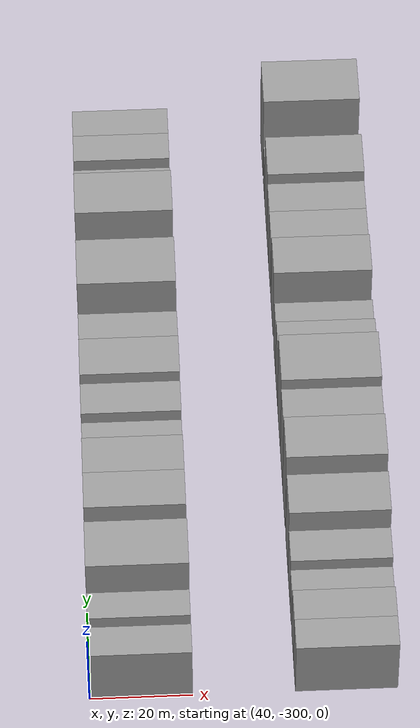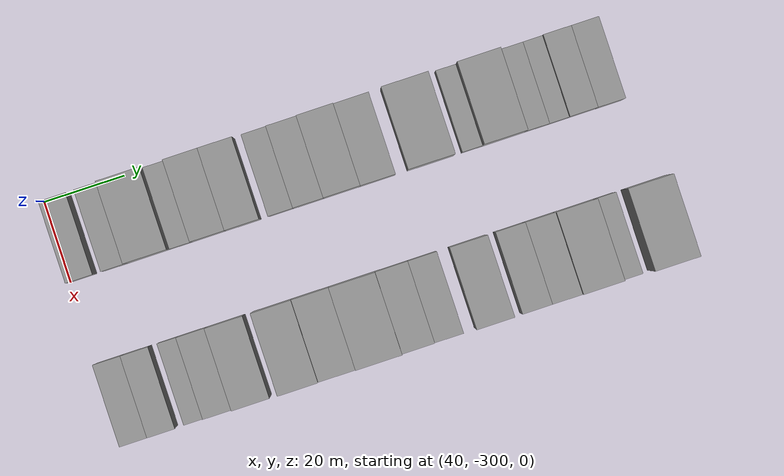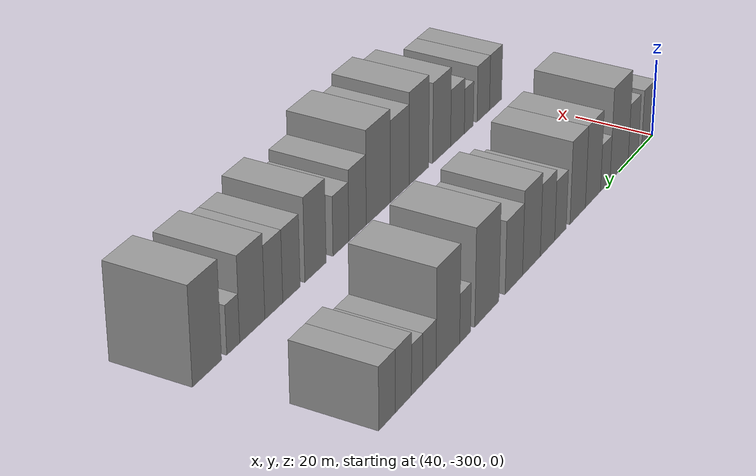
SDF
<sdf version="1.6">
 <world name="default">
  <model name="building_1">
   <static>1</static>
   <pose>50.0000 -296.6885 0 0.000000 0.000000 0.000000</pose>
   <link name="link">
    <pose>0 0 7.50 0 0 0</pose>
    <collision name="collision"><geometry><box><size>20.0000 6.6230 15.0000</size></box></geometry></collision>
    <visual name="visual">
     <cast_shadows>0</cast_shadows>
     <geometry><box><size>20.0000 6.6230 15.0000</size></box></geometry>
     <material>
      <script>
       <uri>model://grey_wall/materials/scripts</uri>
       <uri>model://grey_wall/materials/textures</uri>
       <name>vrc/grey_wall</name>
      </script>
     </material>
    </visual>
   </link>
  </model>
  <model name="building_2">
   <static>1</static>
   <pose>50.0000 -288.3620 0 0.000000 0.000000 0.000000</pose>
   <link name="link">
    <pose>0 0 7.50 0 0 0</pose>
    <collision name="collision"><geometry><box><size>20.0000 6.0301 15.0000</size></box></geometry></collision>
    <visual name="visual">
     <cast_shadows>0</cast_shadows>
     <geometry><box><size>20.0000 6.0301 15.0000</size></box></geometry>
     <material>
      <script>
       <uri>model://grey_wall/materials/scripts</uri>
       <uri>model://grey_wall/materials/textures</uri>
       <name>vrc/grey_wall</name>
      </script>
     </material>
    </visual>
   </link>
  </model>
  <model name="building_3">
   <static>1</static>
   <pose>50.0000 -280.0617 0 0.000000 0.000000 0.000000</pose>
   <link name="link">
    <pose>0 0 12.00 0 0 0</pose>
    <collision name="collision"><geometry><box><size>20.0000 10.5706 24.0000</size></box></geometry></collision>
    <visual name="visual">
     <cast_shadows>0</cast_shadows>
     <geometry><box><size>20.0000 10.5706 24.0000</size></box></geometry>
     <material>
      <script>
       <uri>model://grey_wall/materials/scripts</uri>
       <uri>model://grey_wall/materials/textures</uri>
       <name>vrc/grey_wall</name>
      </script>
     </material>
    </visual>
   </link>
  </model>
  <model name="building_4">
   <static>1</static>
   <pose>50.0000 -272.0623 0 0.000000 0.000000 0.000000</pose>
   <link name="link">
    <pose>0 0 6.00 0 0 0</pose>
    <collision name="collision"><geometry><box><size>20.0000 5.4283 12.0000</size></box></geometry></collision>
    <visual name="visual">
     <cast_shadows>0</cast_shadows>
     <geometry><box><size>20.0000 5.4283 12.0000</size></box></geometry>
     <material>
      <script>
       <uri>model://grey_wall/materials/scripts</uri>
       <uri>model://grey_wall/materials/textures</uri>
       <name>vrc/grey_wall</name>
      </script>
     </material>
    </visual>
   </link>
  </model>
  <model name="building_5">
   <static>1</static>
   <pose>50.0000 -265.1304 0 0.000000 0.000000 0.000000</pose>
   <link name="link">
    <pose>0 0 10.50 0 0 0</pose>
    <collision name="collision"><geometry><box><size>20.0000 8.4354 21.0000</size></box></geometry></collision>
    <visual name="visual">
     <cast_shadows>0</cast_shadows>
     <geometry><box><size>20.0000 8.4354 21.0000</size></box></geometry>
     <material>
      <script>
       <uri>model://grey_wall/materials/scripts</uri>
       <uri>model://grey_wall/materials/textures</uri>
       <name>vrc/grey_wall</name>
      </script>
     </material>
    </visual>
   </link>
  </model>
  <model name="building_6">
   <static>1</static>
   <pose>50.0000 -256.7108 0 0.000000 0.000000 0.000000</pose>
   <link name="link">
    <pose>0 0 10.50 0 0 0</pose>
    <collision name="collision"><geometry><box><size>20.0000 8.4038 21.0000</size></box></geometry></collision>
    <visual name="visual">
     <cast_shadows>0</cast_shadows>
     <geometry><box><size>20.0000 8.4038 21.0000</size></box></geometry>
     <material>
      <script>
       <uri>model://grey_wall/materials/scripts</uri>
       <uri>model://grey_wall/materials/textures</uri>
       <name>vrc/grey_wall</name>
      </script>
     </material>
    </visual>
   </link>
  </model>
  <model name="building_7">
   <static>1</static>
   <pose>50.0000 -247.4542 0 0.000000 0.000000 0.000000</pose>
   <link name="link">
    <pose>0 0 7.50 0 0 0</pose>
    <collision name="collision"><geometry><box><size>20.0000 6.1095 15.0000</size></box></geometry></collision>
    <visual name="visual">
     <cast_shadows>0</cast_shadows>
     <geometry><box><size>20.0000 6.1095 15.0000</size></box></geometry>
     <material>
      <script>
       <uri>model://grey_wall/materials/scripts</uri>
       <uri>model://grey_wall/materials/textures</uri>
       <name>vrc/grey_wall</name>
      </script>
     </material>
    </visual>
   </link>
  </model>
  <model name="building_8">
   <static>1</static>
   <pose>50.0000 -240.6647 0 0.000000 0.000000 0.000000</pose>
   <link name="link">
    <pose>0 0 9.00 0 0 0</pose>
    <collision name="collision"><geometry><box><size>20.0000 7.4693 18.0000</size></box></geometry></collision>
    <visual name="visual">
     <cast_shadows>0</cast_shadows>
     <geometry><box><size>20.0000 7.4693 18.0000</size></box></geometry>
     <material>
      <script>
       <uri>model://grey_wall/materials/scripts</uri>
       <uri>model://grey_wall/materials/textures</uri>
       <name>vrc/grey_wall</name>
      </script>
     </material>
    </visual>
   </link>
  </model>
  <model name="building_9">
   <static>1</static>
   <pose>50.0000 -232.4220 0 0.000000 0.000000 0.000000</pose>
   <link name="link">
    <pose>0 0 10.50 0 0 0</pose>
    <collision name="collision"><geometry><box><size>20.0000 9.0161 21.0000</size></box></geometry></collision>
    <visual name="visual">
     <cast_shadows>0</cast_shadows>
     <geometry><box><size>20.0000 9.0161 21.0000</size></box></geometry>
     <material>
      <script>
       <uri>model://grey_wall/materials/scripts</uri>
       <uri>model://grey_wall/materials/textures</uri>
       <name>vrc/grey_wall</name>
      </script>
     </material>
    </visual>
   </link>
  </model>
  <model name="building_10">
   <static>1</static>
   <pose>50.0000 -223.6112 0 0.000000 0.000000 0.000000</pose>
   <link name="link">
    <pose>0 0 9.00 0 0 0</pose>
    <collision name="collision"><geometry><box><size>20.0000 8.6056 18.0000</size></box></geometry></collision>
    <visual name="visual">
     <cast_shadows>0</cast_shadows>
     <geometry><box><size>20.0000 8.6056 18.0000</size></box></geometry>
     <material>
      <script>
       <uri>model://grey_wall/materials/scripts</uri>
       <uri>model://grey_wall/materials/textures</uri>
       <name>vrc/grey_wall</name>
      </script>
     </material>
    </visual>
   </link>
  </model>
  <model name="building_11">
   <static>1</static>
   <pose>50.0000 -210.5880 0 0.000000 0.000000 0.000000</pose>
   <link name="link">
    <pose>0 0 12.00 0 0 0</pose>
    <collision name="collision"><geometry><box><size>20.0000 11.4408 24.0000</size></box></geometry></collision>
    <visual name="visual">
     <cast_shadows>0</cast_shadows>
     <geometry><box><size>20.0000 11.4408 24.0000</size></box></geometry>
     <material>
      <script>
       <uri>model://grey_wall/materials/scripts</uri>
       <uri>model://grey_wall/materials/textures</uri>
       <name>vrc/grey_wall</name>
      </script>
     </material>
    </visual>
   </link>
  </model>
  <model name="building_12">
   <static>1</static>
   <pose>50.0000 -200.3734 0 0.000000 0.000000 0.000000</pose>
   <link name="link">
    <pose>0 0 6.00 0 0 0</pose>
    <collision name="collision"><geometry><box><size>20.0000 4.9884 12.0000</size></box></geometry></collision>
    <visual name="visual">
     <cast_shadows>0</cast_shadows>
     <geometry><box><size>20.0000 4.9884 12.0000</size></box></geometry>
     <material>
      <script>
       <uri>model://grey_wall/materials/scripts</uri>
       <uri>model://grey_wall/materials/textures</uri>
       <name>vrc/grey_wall</name>
      </script>
     </material>
    </visual>
   </link>
  </model>
  <model name="building_13">
   <static>1</static>
   <pose>50.0000 -192.5975 0 0.000000 0.000000 0.000000</pose>
   <link name="link">
    <pose>0 0 12.00 0 0 0</pose>
    <collision name="collision"><geometry><box><size>20.0000 10.5634 24.0000</size></box></geometry></collision>
    <visual name="visual">
     <cast_shadows>0</cast_shadows>
     <geometry><box><size>20.0000 10.5634 24.0000</size></box></geometry>
     <material>
      <script>
       <uri>model://grey_wall/materials/scripts</uri>
       <uri>model://grey_wall/materials/textures</uri>
       <name>vrc/grey_wall</name>
      </script>
     </material>
    </visual>
   </link>
  </model>
  <model name="building_14">
   <static>1</static>
   <pose>50.0000 -184.3863 0 0.000000 0.000000 0.000000</pose>
   <link name="link">
    <pose>0 0 6.00 0 0 0</pose>
    <collision name="collision"><geometry><box><size>20.0000 5.8589 12.0000</size></box></geometry></collision>
    <visual name="visual">
     <cast_shadows>0</cast_shadows>
     <geometry><box><size>20.0000 5.8589 12.0000</size></box></geometry>
     <material>
      <script>
       <uri>model://grey_wall/materials/scripts</uri>
       <uri>model://grey_wall/materials/textures</uri>
       <name>vrc/grey_wall</name>
      </script>
     </material>
    </visual>
   </link>
  </model>
  <model name="building_15">
   <static>1</static>
   <pose>50.0000 -179.0469 0 0.000000 0.000000 0.000000</pose>
   <link name="link">
    <pose>0 0 6.00 0 0 0</pose>
    <collision name="collision"><geometry><box><size>20.0000 4.8199 12.0000</size></box></geometry></collision>
    <visual name="visual">
     <cast_shadows>0</cast_shadows>
     <geometry><box><size>20.0000 4.8199 12.0000</size></box></geometry>
     <material>
      <script>
       <uri>model://grey_wall/materials/scripts</uri>
       <uri>model://grey_wall/materials/textures</uri>
       <name>vrc/grey_wall</name>
      </script>
     </material>
    </visual>
   </link>
  </model>
  <model name="building_16">
   <static>1</static>
   <pose>50.0000 -173.2022 0 0.000000 0.000000 0.000000</pose>
   <link name="link">
    <pose>0 0 7.50 0 0 0</pose>
    <collision name="collision"><geometry><box><size>20.0000 6.8695 15.0000</size></box></geometry></collision>
    <visual name="visual">
     <cast_shadows>0</cast_shadows>
     <geometry><box><size>20.0000 6.8695 15.0000</size></box></geometry>
     <material>
      <script>
       <uri>model://grey_wall/materials/scripts</uri>
       <uri>model://grey_wall/materials/textures</uri>
       <name>vrc/grey_wall</name>
      </script>
     </material>
    </visual>
   </link>
  </model>
  <model name="building_17">
   <static>1</static>
   <pose>50.0000 -166.3987 0 0.000000 0.000000 0.000000</pose>
   <link name="link">
    <pose>0 0 7.50 0 0 0</pose>
    <collision name="collision"><geometry><box><size>20.0000 6.7375 15.0000</size></box></geometry></collision>
    <visual name="visual">
     <cast_shadows>0</cast_shadows>
     <geometry><box><size>20.0000 6.7375 15.0000</size></box></geometry>
     <material>
      <script>
       <uri>model://grey_wall/materials/scripts</uri>
       <uri>model://grey_wall/materials/textures</uri>
       <name>vrc/grey_wall</name>
      </script>
     </material>
    </visual>
   </link>
  </model>
  <model name="building_70">
   <static>1</static>
   <pose>90.0000 -296.6307 0 0.000000 0.000000 0.000000</pose>
   <link name="link">
    <pose>0 0 7.50 0 0 0</pose>
    <collision name="collision"><geometry><box><size>20.0000 6.7386 15.0000</size></box></geometry></collision>
    <visual name="visual">
     <cast_shadows>0</cast_shadows>
     <geometry><box><size>20.0000 6.7386 15.0000</size></box></geometry>
     <material>
      <script>
       <uri>model://grey_wall/materials/scripts</uri>
       <uri>model://grey_wall/materials/textures</uri>
       <name>vrc/grey_wall</name>
      </script>
     </material>
    </visual>
   </link>
  </model>
  <model name="building_71">
   <static>1</static>
   <pose>90.0000 -289.8558 0 0.000000 0.000000 0.000000</pose>
   <link name="link">
    <pose>0 0 7.50 0 0 0</pose>
    <collision name="collision"><geometry><box><size>20.0000 6.8113 15.0000</size></box></geometry></collision>
    <visual name="visual">
     <cast_shadows>0</cast_shadows>
     <geometry><box><size>20.0000 6.8113 15.0000</size></box></geometry>
     <material>
      <script>
       <uri>model://grey_wall/materials/scripts</uri>
       <uri>model://grey_wall/materials/textures</uri>
       <name>vrc/grey_wall</name>
      </script>
     </material>
    </visual>
   </link>
  </model>
  <model name="building_72">
   <static>1</static>
   <pose>90.0000 -282.0487 0 0.000000 0.000000 0.000000</pose>
   <link name="link">
    <pose>0 0 6.00 0 0 0</pose>
    <collision name="collision"><geometry><box><size>20.0000 4.8029 12.0000</size></box></geometry></collision>
    <visual name="visual">
     <cast_shadows>0</cast_shadows>
     <geometry><box><size>20.0000 4.8029 12.0000</size></box></geometry>
     <material>
      <script>
       <uri>model://grey_wall/materials/scripts</uri>
       <uri>model://grey_wall/materials/textures</uri>
       <name>vrc/grey_wall</name>
      </script>
     </material>
    </visual>
   </link>
  </model>
  <model name="building_73">
   <static>1</static>
   <pose>90.0000 -276.0375 0 0.000000 0.000000 0.000000</pose>
   <link name="link">
    <pose>0 0 7.50 0 0 0</pose>
    <collision name="collision"><geometry><box><size>20.0000 7.2195 15.0000</size></box></geometry></collision>
    <visual name="visual">
     <cast_shadows>0</cast_shadows>
     <geometry><box><size>20.0000 7.2195 15.0000</size></box></geometry>
     <material>
      <script>
       <uri>model://grey_wall/materials/scripts</uri>
       <uri>model://grey_wall/materials/textures</uri>
       <name>vrc/grey_wall</name>
      </script>
     </material>
    </visual>
   </link>
  </model>
  <model name="building_74">
   <static>1</static>
   <pose>90.0000 -267.8022 0 0.000000 0.000000 0.000000</pose>
   <link name="link">
    <pose>0 0 10.50 0 0 0</pose>
    <collision name="collision"><geometry><box><size>20.0000 9.2510 21.0000</size></box></geometry></collision>
    <visual name="visual">
     <cast_shadows>0</cast_shadows>
     <geometry><box><size>20.0000 9.2510 21.0000</size></box></geometry>
     <material>
      <script>
       <uri>model://grey_wall/materials/scripts</uri>
       <uri>model://grey_wall/materials/textures</uri>
       <name>vrc/grey_wall</name>
      </script>
     </material>
    </visual>
   </link>
  </model>
  <model name="building_75">
   <static>1</static>
   <pose>90.0000 -256.2626 0 0.000000 0.000000 0.000000</pose>
   <link name="link">
    <pose>0 0 12.00 0 0 0</pose>
    <collision name="collision"><geometry><box><size>20.0000 9.8283 24.0000</size></box></geometry></collision>
    <visual name="visual">
     <cast_shadows>0</cast_shadows>
     <geometry><box><size>20.0000 9.8283 24.0000</size></box></geometry>
     <material>
      <script>
       <uri>model://grey_wall/materials/scripts</uri>
       <uri>model://grey_wall/materials/textures</uri>
       <name>vrc/grey_wall</name>
      </script>
     </material>
    </visual>
   </link>
  </model>
  <model name="building_76">
   <static>1</static>
   <pose>90.0000 -246.8110 0 0.000000 0.000000 0.000000</pose>
   <link name="link">
    <pose>0 0 10.50 0 0 0</pose>
    <collision name="collision"><geometry><box><size>20.0000 9.0748 21.0000</size></box></geometry></collision>
    <visual name="visual">
     <cast_shadows>0</cast_shadows>
     <geometry><box><size>20.0000 9.0748 21.0000</size></box></geometry>
     <material>
      <script>
       <uri>model://grey_wall/materials/scripts</uri>
       <uri>model://grey_wall/materials/textures</uri>
       <name>vrc/grey_wall</name>
      </script>
     </material>
    </visual>
   </link>
  </model>
  <model name="building_77">
   <static>1</static>
   <pose>90.0000 -236.6115 0 0.000000 0.000000 0.000000</pose>
   <link name="link">
    <pose>0 0 12.00 0 0 0</pose>
    <collision name="collision"><geometry><box><size>20.0000 11.3241 24.0000</size></box></geometry></collision>
    <visual name="visual">
     <cast_shadows>0</cast_shadows>
     <geometry><box><size>20.0000 11.3241 24.0000</size></box></geometry>
     <material>
      <script>
       <uri>model://grey_wall/materials/scripts</uri>
       <uri>model://grey_wall/materials/textures</uri>
       <name>vrc/grey_wall</name>
      </script>
     </material>
    </visual>
   </link>
  </model>
  <model name="building_78">
   <static>1</static>
   <pose>90.0000 -226.9685 0 0.000000 0.000000 0.000000</pose>
   <link name="link">
    <pose>0 0 9.00 0 0 0</pose>
    <collision name="collision"><geometry><box><size>20.0000 7.9618 18.0000</size></box></geometry></collision>
    <visual name="visual">
     <cast_shadows>0</cast_shadows>
     <geometry><box><size>20.0000 7.9618 18.0000</size></box></geometry>
     <material>
      <script>
       <uri>model://grey_wall/materials/scripts</uri>
       <uri>model://grey_wall/materials/textures</uri>
       <name>vrc/grey_wall</name>
      </script>
     </material>
    </visual>
   </link>
  </model>
  <model name="building_79">
   <static>1</static>
   <pose>90.0000 -219.4163 0 0.000000 0.000000 0.000000</pose>
   <link name="link">
    <pose>0 0 7.50 0 0 0</pose>
    <collision name="collision"><geometry><box><size>20.0000 7.1426 15.0000</size></box></geometry></collision>
    <visual name="visual">
     <cast_shadows>0</cast_shadows>
     <geometry><box><size>20.0000 7.1426 15.0000</size></box></geometry>
     <material>
      <script>
       <uri>model://grey_wall/materials/scripts</uri>
       <uri>model://grey_wall/materials/textures</uri>
       <name>vrc/grey_wall</name>
      </script>
     </material>
    </visual>
   </link>
  </model>
  <model name="building_80">
   <static>1</static>
   <pose>90.0000 -208.2150 0 0.000000 0.000000 0.000000</pose>
   <link name="link">
    <pose>0 0 10.50 0 0 0</pose>
    <collision name="collision"><geometry><box><size>20.0000 9.2599 21.0000</size></box></geometry></collision>
    <visual name="visual">
     <cast_shadows>0</cast_shadows>
     <geometry><box><size>20.0000 9.2599 21.0000</size></box></geometry>
     <material>
      <script>
       <uri>model://grey_wall/materials/scripts</uri>
       <uri>model://grey_wall/materials/textures</uri>
       <name>vrc/grey_wall</name>
      </script>
     </material>
    </visual>
   </link>
  </model>
  <model name="building_81">
   <static>1</static>
   <pose>90.0000 -197.9384 0 0.000000 0.000000 0.000000</pose>
   <link name="link">
    <pose>0 0 9.00 0 0 0</pose>
    <collision name="collision"><geometry><box><size>20.0000 7.2932 18.0000</size></box></geometry></collision>
    <visual name="visual">
     <cast_shadows>0</cast_shadows>
     <geometry><box><size>20.0000 7.2932 18.0000</size></box></geometry>
     <material>
      <script>
       <uri>model://grey_wall/materials/scripts</uri>
       <uri>model://grey_wall/materials/textures</uri>
       <name>vrc/grey_wall</name>
      </script>
     </material>
    </visual>
   </link>
  </model>
  <model name="building_82">
   <static>1</static>
   <pose>90.0000 -190.6180 0 0.000000 0.000000 0.000000</pose>
   <link name="link">
    <pose>0 0 9.00 0 0 0</pose>
    <collision name="collision"><geometry><box><size>20.0000 7.3476 18.0000</size></box></geometry></collision>
    <visual name="visual">
     <cast_shadows>0</cast_shadows>
     <geometry><box><size>20.0000 7.3476 18.0000</size></box></geometry>
     <material>
      <script>
       <uri>model://grey_wall/materials/scripts</uri>
       <uri>model://grey_wall/materials/textures</uri>
       <name>vrc/grey_wall</name>
      </script>
     </material>
    </visual>
   </link>
  </model>
  <model name="building_83">
   <static>1</static>
   <pose>90.0000 -181.9097 0 0.000000 0.000000 0.000000</pose>
   <link name="link">
    <pose>0 0 10.50 0 0 0</pose>
    <collision name="collision"><geometry><box><size>20.0000 10.0691 21.0000</size></box></geometry></collision>
    <visual name="visual">
     <cast_shadows>0</cast_shadows>
     <geometry><box><size>20.0000 10.0691 21.0000</size></box></geometry>
     <material>
      <script>
       <uri>model://grey_wall/materials/scripts</uri>
       <uri>model://grey_wall/materials/textures</uri>
       <name>vrc/grey_wall</name>
      </script>
     </material>
    </visual>
   </link>
  </model>
  <model name="building_84">
   <static>1</static>
   <pose>90.0000 -174.3367 0 0.000000 0.000000 0.000000</pose>
   <link name="link">
    <pose>0 0 6.00 0 0 0</pose>
    <collision name="collision"><geometry><box><size>20.0000 5.0769 12.0000</size></box></geometry></collision>
    <visual name="visual">
     <cast_shadows>0</cast_shadows>
     <geometry><box><size>20.0000 5.0769 12.0000</size></box></geometry>
     <material>
      <script>
       <uri>model://grey_wall/materials/scripts</uri>
       <uri>model://grey_wall/materials/textures</uri>
       <name>vrc/grey_wall</name>
      </script>
     </material>
    </visual>
   </link>
  </model>
  <model name="building_85">
   <static>1</static>
   <pose>90.0000 -164.2686 0 0.000000 0.000000 0.000000</pose>
   <link name="link">
    <pose>0 0 12.00 0 0 0</pose>
    <collision name="collision"><geometry><box><size>20.0000 11.0592 24.0000</size></box></geometry></collision>
    <visual name="visual">
     <cast_shadows>0</cast_shadows>
     <geometry><box><size>20.0000 11.0592 24.0000</size></box></geometry>
     <material>
      <script>
       <uri>model://grey_wall/materials/scripts</uri>
       <uri>model://grey_wall/materials/textures</uri>
       <name>vrc/grey_wall</name>
      </script>
     </material>
    </visual>
   </link>
  </model>
 </world>
</sdf>
